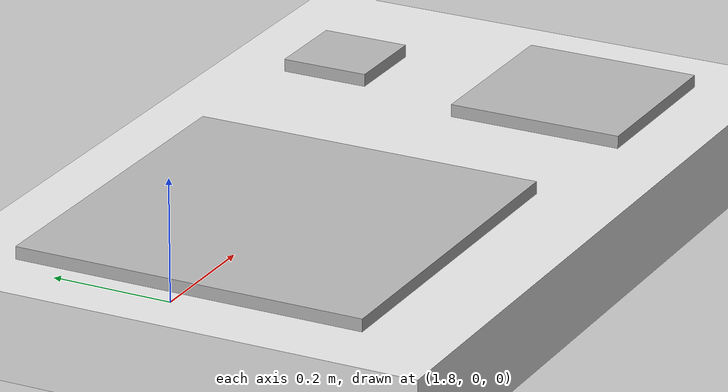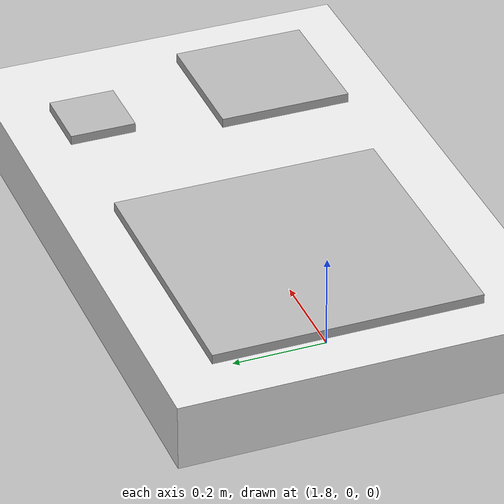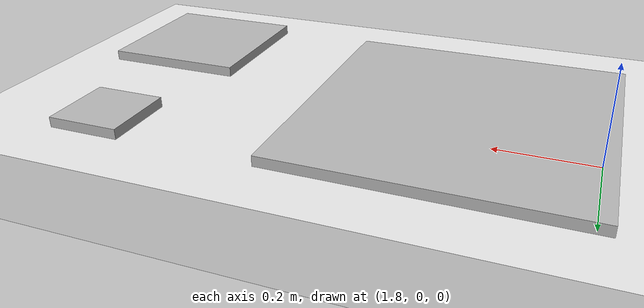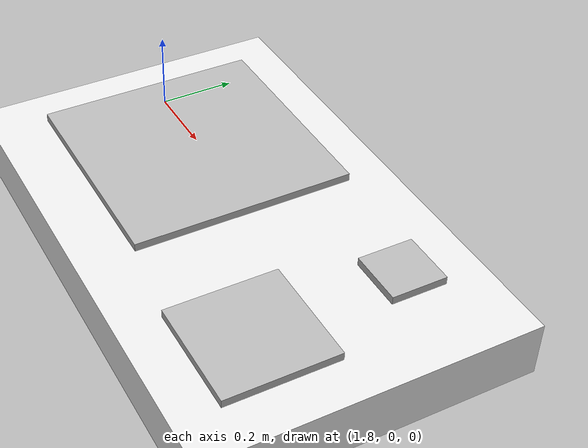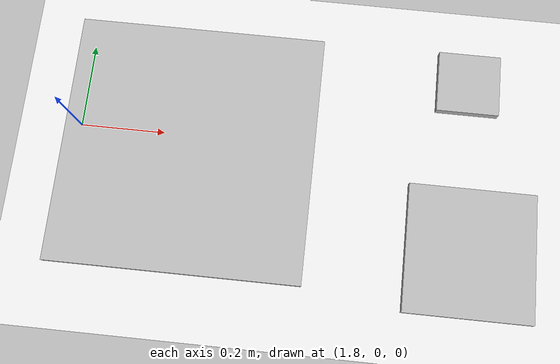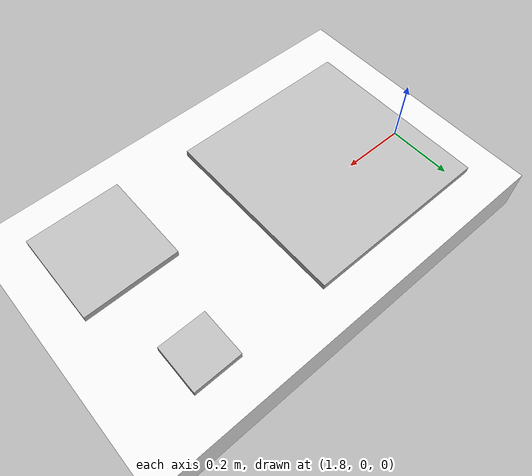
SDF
<sdf version="1.7">
 <world name="default">
  <physics type="ode">
   <ode>
    <solver>
     <type>quick</type>
     <iters>100</iters>
     <sor>1</sor>
     <use_dynamic_moi_rescaling>0</use_dynamic_moi_rescaling>
    </solver>
    <constraints>
     <cfm>0</cfm>
     <erp>0.2</erp>
     <contact_max_correcting_vel>0.1</contact_max_correcting_vel>
     <contact_surface_layer>0</contact_surface_layer>
    </constraints>
   </ode>
   <real_time_update_rate>-1</real_time_update_rate>
   <max_step_size>0.001</max_step_size>
   <real_time_factor>1</real_time_factor>
  </physics>
  <gravity>0 0 -9.8</gravity>
  <light name="sun" type="directional">
   <pose>0 0 10 0 -0 0</pose>
   <diffuse>0.8 0.8 0.8 1</diffuse>
   <specular>0.2 0.2 0.2 1</specular>
   <attenuation>
    <range>1000</range>
    <constant>0.9</constant>
    <linear>0.01</linear>
    <quadratic>0.001</quadratic>
   </attenuation>
   <direction>-0.5 0.1 -0.9</direction>
   <spot><inner_angle>0</inner_angle><outer_angle>0</outer_angle><falloff>0</falloff></spot>
  </light>
  <model name="ground_plane">
   <static>1</static>
   <link name="link">
    <collision name="collision">
     <geometry><plane><normal>0 0 1</normal><size>5000 5000</size></plane></geometry>
     <surface><friction><ode><mu>100</mu><mu2>50</mu2></ode></friction></surface>
    </collision>
    <visual name="runway">
     <pose>0 0 0.005 0 -0 0</pose>
     <cast_shadows>0</cast_shadows>
     <geometry><plane><normal>0 0 1</normal><size>1829 45</size></plane></geometry>
     <material>
      <script><uri>file://media/materials/scripts/gazebo.material</uri><name>Gazebo/Runway</name></script>
     </material>
    </visual>
    <visual name="grass">
     <pose>0 0 -0.1 0 -0 0</pose>
     <cast_shadows>0</cast_shadows>
     <geometry><plane><normal>0 0 1</normal><size>5000 5000</size></plane></geometry>
     <material>
      <script><uri>file://media/materials/scripts/gazebo.material</uri><name>Gazebo/Grass</name></script>
     </material>
    </visual>
   </link>
  </model>
  <magnetic_field>6e-06 2.3e-05 -4.2e-05</magnetic_field>
  <atmosphere type="adiabatic"/>
  <scene><ambient>0.4 0.4 0.4 1</ambient><background>0.7 0.7 0.7 1</background><shadows>1</shadows></scene>
  <spherical_coordinates>
   <surface_model>EARTH_WGS84</surface_model>
   <latitude_deg>0</latitude_deg>
   <longitude_deg>0</longitude_deg>
   <elevation>0</elevation>
   <heading_deg>0</heading_deg>
  </spherical_coordinates>
  <model name="unit_box">
   <link name="link">
    <inertial>
     <mass>4.40849</mass>
     <inertia><ixx>10.4511</ixx><ixy>0</ixy><ixz>0</ixz><iyy>11.8312</iyy><iyz>0</iyz><izz>22.2667</izz></inertia>
    </inertial>
    <pose>-3.23053 -0.437627 0 0 -0 0</pose>
    <visual name="visual">
     <geometry><box><size>5.67305 5.33169 0.145673</size></box></geometry>
     <material>
      <script><name>Gazebo/White</name><uri>file://media/materials/scripts/gazebo.material</uri></script>
      <shader type="pixel"><normal_map>__default__</normal_map></shader>
      <ambient>1 1 1 1</ambient>
      <diffuse>1 1 1 1</diffuse>
      <specular>0 0 0 1</specular>
      <emissive>0 0 0 1</emissive>
     </material>
    </visual>
    <collision name="collision">
     <geometry><box><size>5.67305 5.33169 0.145673</size></box></geometry>
     <surface>
      <friction>
       <ode><mu>1</mu><mu2>1</mu2><fdir1>0 0 0</fdir1><slip1>0</slip1><slip2>0</slip2></ode>
       <torsional>
        <coefficient>1</coefficient>
        <patch_radius>0</patch_radius>
        <surface_radius>0</surface_radius>
        <use_patch_radius>1</use_patch_radius>
        <ode><slip>0</slip></ode>
       </torsional>
      </friction>
      <bounce><restitution_coefficient>0</restitution_coefficient><threshold>1e+06</threshold></bounce>
      <contact>
       <collide_without_contact>0</collide_without_contact>
       <collide_without_contact_bitmask>1</collide_without_contact_bitmask>
       <collide_bitmask>1</collide_bitmask>
       <ode>
        <soft_cfm>0</soft_cfm>
        <soft_erp>0.2</soft_erp>
        <kp>1e+13</kp>
        <kd>1</kd>
        <max_vel>0.01</max_vel>
        <min_depth>0</min_depth>
       </ode>
       <bullet>
        <split_impulse>1</split_impulse>
        <split_impulse_penetration_threshold>-0.01</split_impulse_penetration_threshold>
        <soft_cfm>0</soft_cfm>
        <soft_erp>0.2</soft_erp>
        <kp>1e+13</kp>
        <kd>1</kd>
       </bullet>
      </contact>
     </surface>
    </collision>
   </link>
   <static>1</static>
   <pose>7.34723 0.206215 -0.043718 0 -0 0</pose>
  </model>
  <model name="aruco_visual_marker_half">
   <link name="marker">
    <pose>0 0.8 0 0 -0 0</pose>
    <visual name="visual">
     <geometry><box><size>0.585 0.585 0.1</size></box></geometry>
     <material>
      <script>
       <uri>model://aruco_visual_marker_half/materials/scripts</uri>
       <uri>model://aruco_visual_marker_half/materials/textures</uri>
       <name>ArucoVisualMarkerHalf/Marker</name>
      </script>
     </material>
    </visual>
    <collision name="collision"><geometry><box><size>0.585 0.585 0.5</size></box></geometry></collision>
   </link>
   <link name="marker_pad">
    <pose relative_to="marker">0 0 -1e-05 0 -0 0</pose>
    <visual name="visual">
     <geometry><box><size>0.585 0.585 0.05</size></box></geometry>
     <material>
      <script><uri>file://media/materials/scripts/gazebo.material</uri><name>Gazebo/White</name></script>
     </material>
    </visual>
    <collision name="collision"><geometry><box><size>0.585 0.585 0.1</size></box></geometry></collision>
   </link>
   <joint name="marker_JOINT_marker_pad" type="revolute">
    <parent>marker</parent>
    <child>marker_pad</child>
    <axis>
     <xyz>0 0 1</xyz>
     <limit><upper>0</upper><lower>0</lower></limit>
     <dynamics><spring_reference>0</spring_reference><spring_stiffness>0</spring_stiffness></dynamics>
    </axis>
   </joint>
   <static>1</static>
   <pose>2.06893 -0.840676 0 0 -0 0</pose>
  </model>
  <model name="aruco_visual_marker_octave">
   <link name="marker">
    <pose>0 0.8 0 0 -0 0</pose>
    <visual name="visual">
     <geometry><box><size>0.146 0.146 0.1</size></box></geometry>
     <material>
      <script>
       <uri>model://aruco_visual_marker_octave/materials/scripts</uri>
       <uri>model://aruco_visual_marker_octave/materials/textures</uri>
       <name>ArucoVisualMarkerOctave/Marker</name>
      </script>
     </material>
    </visual>
    <collision name="collision"><geometry><box><size>0.146 0.146 0.5</size></box></geometry></collision>
   </link>
   <link name="marker_pad">
    <pose relative_to="marker">0 0 -1e-05 0 -0 0</pose>
    <visual name="visual">
     <geometry><box><size>0.146 0.146 0.05</size></box></geometry>
     <material>
      <script><uri>file://media/materials/scripts/gazebo.material</uri><name>Gazebo/White</name></script>
     </material>
    </visual>
    <collision name="collision"><geometry><box><size>0.146 0.146 0.1</size></box></geometry></collision>
   </link>
   <joint name="marker_JOINT_marker_pad" type="revolute">
    <parent>marker</parent>
    <child>marker_pad</child>
    <axis>
     <xyz>0 0 1</xyz>
     <limit><upper>0</upper><lower>0</lower></limit>
     <dynamics><spring_reference>0</spring_reference><spring_stiffness>0</spring_stiffness></dynamics>
    </axis>
   </joint>
   <static>1</static>
   <pose>2.71077 -0.620333 0 0 -0 0</pose>
  </model>
  <model name="aruco_visual_marker_quarter">
   <link name="marker">
    <pose>0 0.8 0 0 -0 0</pose>
    <visual name="visual">
     <geometry><box><size>0.292 0.292 0.1</size></box></geometry>
     <material>
      <script>
       <uri>model://aruco_visual_marker_quarter/materials/scripts</uri>
       <uri>model://aruco_visual_marker_quarter/materials/textures</uri>
       <name>ArucoVisualMarkerQuarter/Marker</name>
      </script>
     </material>
    </visual>
    <collision name="collision"><geometry><box><size>0.292 0.292 0.5</size></box></geometry></collision>
   </link>
   <link name="marker_pad">
    <pose relative_to="marker">0 0 -1e-05 0 -0 0</pose>
    <visual name="visual">
     <geometry><box><size>0.292 0.292 0.05</size></box></geometry>
     <material>
      <script><uri>file://media/materials/scripts/gazebo.material</uri><name>Gazebo/White</name></script>
     </material>
    </visual>
    <collision name="collision"><geometry><box><size>0.292 0.292 0.1</size></box></geometry></collision>
   </link>
   <joint name="marker_JOINT_marker_pad" type="revolute">
    <parent>marker</parent>
    <child>marker_pad</child>
    <axis>
     <xyz>0 0 1</xyz>
     <limit><upper>0</upper><lower>0</lower></limit>
     <dynamics><spring_reference>0</spring_reference><spring_stiffness>0</spring_stiffness></dynamics>
    </axis>
   </joint>
   <static>1</static>
   <pose>2.73171 -1.02085 0 0 -0 0</pose>
  </model>
 </world>
</sdf>
